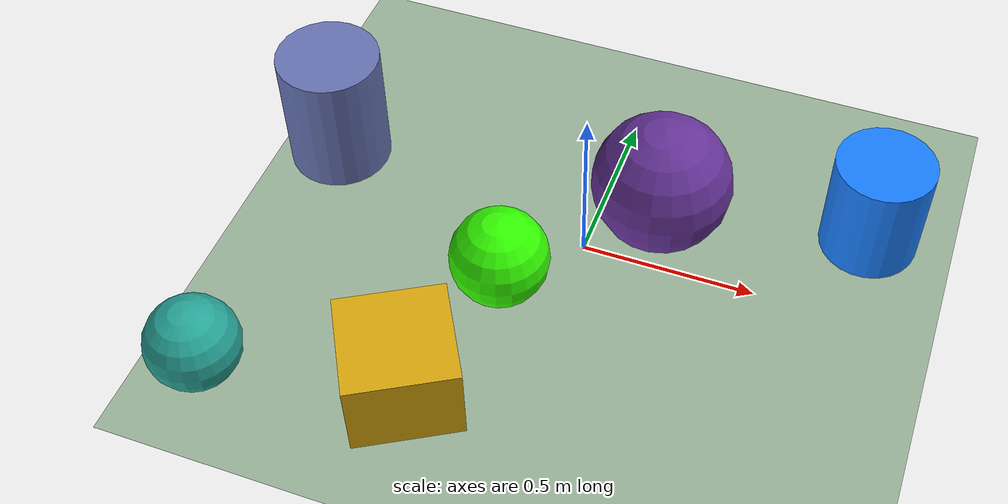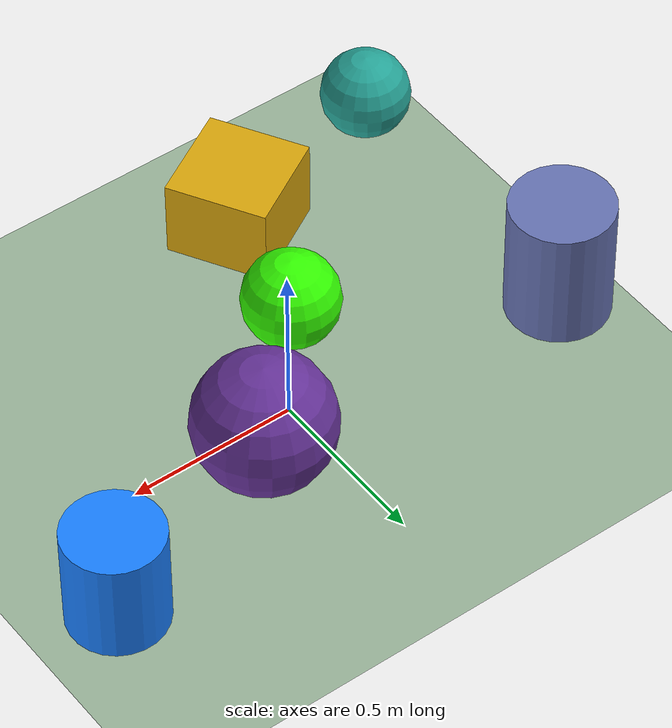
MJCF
<mujoco>
   <asset>
<texture type="skybox" builtin="gradient" rgb1="0.9 0.7 0.6" rgb2="0.5 0.8 1.0" width="256" height="256"/>
<texture name="flat_0" builtin="flat" rgb1="0.2 1.0 0.0" rgb2="0.2 1.0 0.0"  width="200" height="200"/>
<texture name="gradient_1" builtin="gradient" rgb1="0.9 0.9 0.0" rgb2="0.8 0.4 0.1" width="200" height="200"/>
<texture name="flat_2" builtin="flat" rgb1="0.4 0.2 0.6" rgb2="0.4 0.2 0.6"  width="200" height="200"/>
<texture name="gradient_3" builtin="gradient" rgb1="0.5 0.9 0.8" rgb2="0.3 0.0 0.6" width="200" height="200"/>
<texture name="gradient_4" builtin="gradient" rgb1="0.2 0.7 0.6" rgb2="0.1 0.6 0.6" width="200" height="200"/>
<texture name="flat_5" builtin="flat" rgb1="0.1 0.5 1.0" rgb2="0.1 0.5 1.0"  width="200" height="200"/><material name="flat_0_mat" reflectance="0" texture="flat_0" texuniform="true"/>
<material name="gradient_1_mat" reflectance="0" texture="gradient_1" texuniform="true"/>
<material name="flat_2_mat" reflectance="0" texture="flat_2" texuniform="true"/>
<material name="gradient_3_mat" reflectance="0" texture="gradient_3" texuniform="true"/>
<material name="gradient_4_mat" reflectance="0" texture="gradient_4" texuniform="true"/>
<material name="flat_5_mat" reflectance="0" texture="flat_5" texuniform="true"/>
   </asset>

   <worldbody>
      <light diffuse=".9 .9 .9" pos="0 0 3" dir="0 0 -1"/>
     <geom type="plane" size="1 1 0.1" rgba="0.6 0.7 0.6 1"/>
<geom type="sphere" pos="-0.17 -0.22 0.14" size="0.14 0.14 0.14" material="flat_0_mat" euler="0 0 89" />
<geom type="box" pos="-0.29 -0.63 0.12" size="0.15 0.15 0.12" material="gradient_1_mat" euler="0 0 30" />
<geom type="sphere" pos="0.18 0.14 0.2" size="0.2 0.2 0.2" material="flat_2_mat" euler="0 0 42" />
<geom type="cylinder" pos="-0.82 0.12 0.19" size="0.15 0.19 0.19" material="gradient_3_mat" euler="0 0 0" />
<geom type="sphere" pos="-0.82 -0.75 0.13" size="0.13 0.13 0.13" material="gradient_4_mat" euler="0 0 38" />
<geom type="cylinder" pos="0.76 0.3 0.16" size="0.14 0.16 0.16" material="flat_5_mat" euler="0 0 69" /><camera euler="60 0 180" fovy="60" name="camera1" pos="-0.2 -1.5 1"></camera>   </worldbody>
</mujoco>
